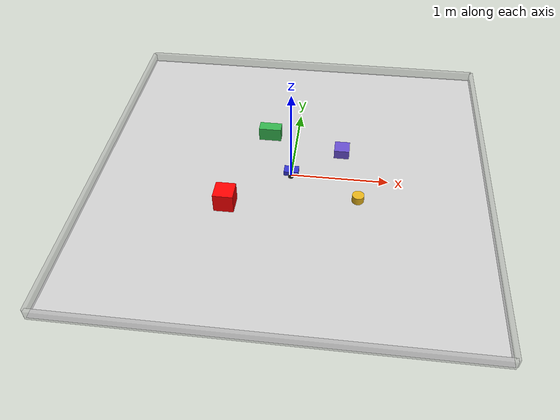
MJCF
<mujoco model="RoClaw">
  <compiler angle="radian"/>

  <option timestep="0.002" gravity="0 0 -9.81" integrator="implicit"/>

  <default>
    <geom condim="3" friction="1.0 0.005 0.0001"/>
    <joint damping="0.01"/>
  </default>

  <asset>
    <texture name="grid" type="2d" builtin="checker"
             rgb1="0.9 0.9 0.9" rgb2="0.7 0.7 0.7"
             width="512" height="512"/>
    <material name="grid_mat" texture="grid" texrepeat="8 8" texuniform="true"/>
    <material name="chassis_mat" rgba="0.2 0.2 0.8 1"/>
    <material name="wheel_mat" rgba="0.15 0.15 0.15 1"/>
    <material name="caster_mat" rgba="0.6 0.6 0.6 1"/>
    <material name="obstacle_mat" rgba="0.4 0.3 0.8 1"/>
    <material name="obstacle2_mat" rgba="0.2 0.7 0.3 1"/>
    <material name="obstacle3_mat" rgba="0.9 0.7 0.1 1"/>
    <material name="red_cube_mat" rgba="1.0 0.0 0.0 1"/>
  </asset>

  <!-- Overhead area light so the external_cam (bird's-eye) gets illumination -->
  <visual>
    <headlight ambient="0.3 0.3 0.3" diffuse="0.5 0.5 0.5"/>
  </visual>

  <worldbody>
    <!-- Overhead directional light (illuminates scene for all cameras) -->
    <light name="overhead" pos="0 0 1.5" dir="0 0 -1"
           diffuse="0.8 0.8 0.8" specular="0.2 0.2 0.2" directional="true"/>

    <!-- Ground plane -->
    <geom name="floor" type="plane" size="2 2 0.01" material="grid_mat"/>

    <!-- Arena walls (low barriers) -->
    <geom name="wall_north" type="box" pos="0 2 0.05" size="2 0.02 0.05" rgba="0.5 0.5 0.5 0.3"/>
    <geom name="wall_south" type="box" pos="0 -2 0.05" size="2 0.02 0.05" rgba="0.5 0.5 0.5 0.3"/>
    <geom name="wall_east" type="box" pos="2 0 0.05" size="0.02 2 0.05" rgba="0.5 0.5 0.5 0.3"/>
    <geom name="wall_west" type="box" pos="-2 0 0.05" size="0.02 2 0.05" rgba="0.5 0.5 0.5 0.3"/>

    <!-- Obstacle boxes for navigation testing -->
    <body name="obstacle1" pos="0.5 0.4 0.05">
      <geom type="box" size="0.08 0.08 0.05" material="obstacle_mat"/>
    </body>
    <body name="obstacle2" pos="-0.3 0.6 0.075">
      <geom type="box" size="0.12 0.06 0.075" material="obstacle2_mat"/>
    </body>
    <body name="obstacle3" pos="0.7 -0.3 0.04">
      <geom type="cylinder" size="0.06 0.04" material="obstacle3_mat"/>
    </body>

    <!-- Bright red cube — navigation target -->
    <body name="red_cube" pos="-0.6 -0.5 0.1">
      <geom type="box" size="0.1 0.1 0.1" material="red_cube_mat"/>
    </body>

    <!-- External overhead camera (matches V1 Android phone on tripod) -->
    <!-- Positioned 0.8m above arena center, looking straight down -->
    <camera name="external_cam" pos="0 0 0.8" xyaxes="1 0 0 0 1 0"
            fovy="90" resolution="640 480"/>

    <!-- ============== RoClaw Robot ============== -->
    <body name="chassis" pos="0 0 0.06">
      <freejoint name="root"/>

      <!-- Chassis body: 15x10x5 cm -->
      <geom name="chassis_geom" type="box"
            size="0.075 0.05 0.025"
            mass="0.3"
            material="chassis_mat"/>

      <!-- Forward-facing camera ("eyes") mounted on front of chassis -->
      <camera name="eyes" pos="0.075 0 0.02" xyaxes="0 -1 0 0 0 1"
              fovy="65" resolution="320 240"/>

      <!-- Left wheel -->
      <body name="left_wheel" pos="0 0.05 -0.025">
        <joint name="left_wheel_joint" type="hinge" axis="0 1 0" damping="0.005"/>
        <geom name="left_wheel_geom" type="cylinder"
              size="0.03 0.01"
              euler="1.5708 0 0"
              mass="0.05"
              material="wheel_mat"
              friction="1.5 0.005 0.0001"/>
      </body>

      <!-- Right wheel -->
      <body name="right_wheel" pos="0 -0.05 -0.025">
        <joint name="right_wheel_joint" type="hinge" axis="0 1 0" damping="0.005"/>
        <geom name="right_wheel_geom" type="cylinder"
              size="0.03 0.01"
              euler="1.5708 0 0"
              mass="0.05"
              material="wheel_mat"
              friction="1.5 0.005 0.0001"/>
      </body>

      <!-- Rear caster ball (frictionless for balance) -->
      <body name="caster" pos="-0.06 0 -0.025">
        <joint name="caster_x" type="hinge" axis="1 0 0" damping="0.001"/>
        <joint name="caster_y" type="hinge" axis="0 1 0" damping="0.001"/>
        <geom name="caster_geom" type="sphere"
              size="0.015"
              mass="0.02"
              material="caster_mat"
              friction="0.05 0.001 0.0001"/>
      </body>
    </body>
  </worldbody>

  <actuator>
    <!-- Velocity actuators for differential drive -->
    <!-- ctrlrange: max angular velocity = (1024/4096) * 2*PI = 1.571 rad/s -->
    <velocity name="left_wheel" joint="left_wheel_joint"
              ctrlrange="-1.571 1.571" kv="1.0"/>
    <velocity name="right_wheel" joint="right_wheel_joint"
              ctrlrange="-1.571 1.571" kv="1.0"/>
  </actuator>
</mujoco>
